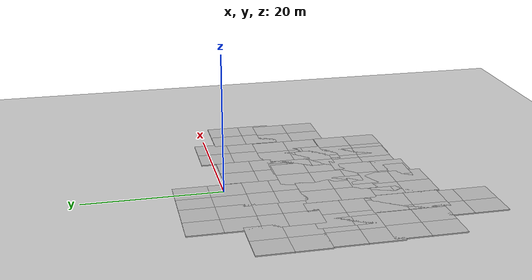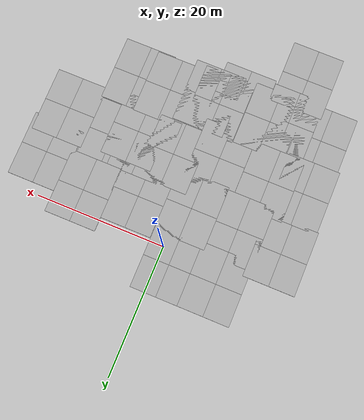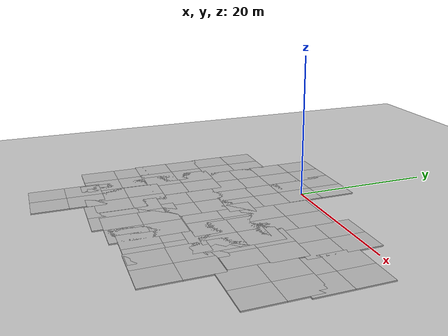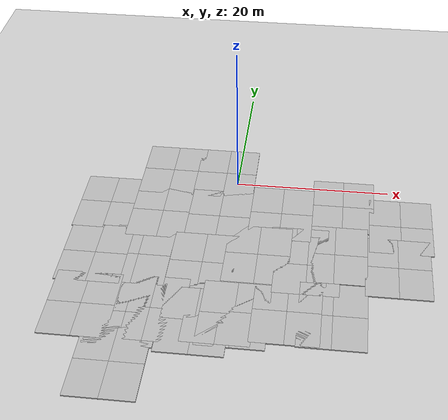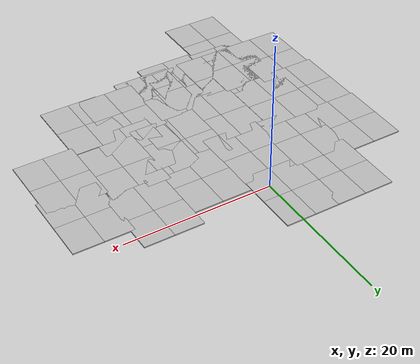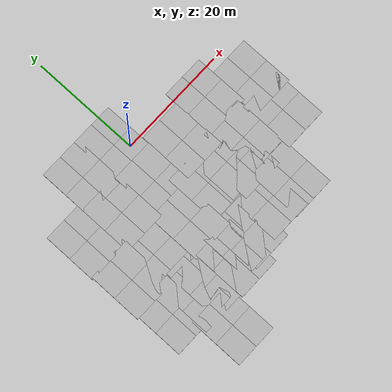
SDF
<sdf version="1.6">
 <world name="default">
  <model name="ground_plane">
   <static>1</static>
   <link name="link">
    <collision name="collision">
     <geometry><plane><normal>0 0 1</normal><size>100 100</size></plane></geometry>
     <surface><friction><ode><mu>100</mu><mu2>50</mu2></ode></friction></surface>
    </collision>
    <visual name="visual">
     <cast_shadows>0</cast_shadows>
     <geometry><plane><normal>0 0 1</normal><size>100 100</size></plane></geometry>
     <material>
      <script><uri>file://media/materials/scripts/gazebo.material</uri><name>Gazebo/Grey</name></script>
     </material>
    </visual>
   </link>
  </model>
  <model name="mud_box">
   <static>1</static>
   <link name="link">
    <collision name="collision"><geometry><box><size>8 10 0.2</size></box></geometry></collision>
    <visual name="visual_1">
     <pose>-2 2.5 0 0 -0 0</pose>
     <cast_shadows>0</cast_shadows>
     <geometry><box><size>4 5 0.2</size></box></geometry>
     <material>
      <script>
       <uri>model://mud_box/materials/scripts</uri>
       <uri>model://mud_box/materials/textures</uri>
       <name>vrc/mud</name>
      </script>
     </material>
    </visual>
    <visual name="visual_2">
     <pose>2 2.5 0 0 -0 0</pose>
     <cast_shadows>0</cast_shadows>
     <geometry><box><size>4 5 0.2</size></box></geometry>
     <material>
      <script>
       <uri>model://mud_box/materials/scripts</uri>
       <uri>model://mud_box/materials/textures</uri>
       <name>vrc/mud</name>
      </script>
     </material>
    </visual>
    <visual name="visual_3">
     <pose>2 -2.5 0 0 -0 0</pose>
     <cast_shadows>0</cast_shadows>
     <geometry><box><size>4 5 0.2</size></box></geometry>
     <material>
      <script>
       <uri>model://mud_box/materials/scripts</uri>
       <uri>model://mud_box/materials/textures</uri>
       <name>vrc/mud</name>
      </script>
     </material>
    </visual>
    <visual name="visual_4">
     <pose>-2 -2.5 0 0 -0 0</pose>
     <cast_shadows>0</cast_shadows>
     <geometry><box><size>4 5 0.2</size></box></geometry>
     <material>
      <script>
       <uri>model://mud_box/materials/scripts</uri>
       <uri>model://mud_box/materials/textures</uri>
       <name>vrc/mud</name>
      </script>
     </material>
    </visual>
   </link>
   <pose>-9.02524 2.09965 0 0 -0 0</pose>
  </model>
  <model name="mud_box_clone">
   <static>1</static>
   <link name="link">
    <collision name="collision"><geometry><box><size>8 10 0.2</size></box></geometry></collision>
    <visual name="visual_1">
     <pose>-2 2.5 0 0 -0 0</pose>
     <cast_shadows>0</cast_shadows>
     <geometry><box><size>4 5 0.2</size></box></geometry>
     <material>
      <script>
       <uri>model://mud_box/materials/scripts</uri>
       <uri>model://mud_box/materials/textures</uri>
       <name>vrc/mud</name>
      </script>
     </material>
    </visual>
    <visual name="visual_2">
     <pose>2 2.5 0 0 -0 0</pose>
     <cast_shadows>0</cast_shadows>
     <geometry><box><size>4 5 0.2</size></box></geometry>
     <material>
      <script>
       <uri>model://mud_box/materials/scripts</uri>
       <uri>model://mud_box/materials/textures</uri>
       <name>vrc/mud</name>
      </script>
     </material>
    </visual>
    <visual name="visual_3">
     <pose>2 -2.5 0 0 -0 0</pose>
     <cast_shadows>0</cast_shadows>
     <geometry><box><size>4 5 0.2</size></box></geometry>
     <material>
      <script>
       <uri>model://mud_box/materials/scripts</uri>
       <uri>model://mud_box/materials/textures</uri>
       <name>vrc/mud</name>
      </script>
     </material>
    </visual>
    <visual name="visual_4">
     <pose>-2 -2.5 0 0 -0 0</pose>
     <cast_shadows>0</cast_shadows>
     <geometry><box><size>4 5 0.2</size></box></geometry>
     <material>
      <script>
       <uri>model://mud_box/materials/scripts</uri>
       <uri>model://mud_box/materials/textures</uri>
       <name>vrc/mud</name>
      </script>
     </material>
    </visual>
   </link>
   <pose>-9.01138 -6.47442 0 0 -0 0</pose>
  </model>
  <model name="mud_box_clone_1">
   <static>1</static>
   <link name="link">
    <collision name="collision"><geometry><box><size>8 10 0.2</size></box></geometry></collision>
    <visual name="visual_1">
     <pose>-2 2.5 0 0 -0 0</pose>
     <cast_shadows>0</cast_shadows>
     <geometry><box><size>4 5 0.2</size></box></geometry>
     <material>
      <script>
       <uri>model://mud_box/materials/scripts</uri>
       <uri>model://mud_box/materials/textures</uri>
       <name>vrc/mud</name>
      </script>
     </material>
    </visual>
    <visual name="visual_2">
     <pose>2 2.5 0 0 -0 0</pose>
     <cast_shadows>0</cast_shadows>
     <geometry><box><size>4 5 0.2</size></box></geometry>
     <material>
      <script>
       <uri>model://mud_box/materials/scripts</uri>
       <uri>model://mud_box/materials/textures</uri>
       <name>vrc/mud</name>
      </script>
     </material>
    </visual>
    <visual name="visual_3">
     <pose>2 -2.5 0 0 -0 0</pose>
     <cast_shadows>0</cast_shadows>
     <geometry><box><size>4 5 0.2</size></box></geometry>
     <material>
      <script>
       <uri>model://mud_box/materials/scripts</uri>
       <uri>model://mud_box/materials/textures</uri>
       <name>vrc/mud</name>
      </script>
     </material>
    </visual>
    <visual name="visual_4">
     <pose>-2 -2.5 0 0 -0 0</pose>
     <cast_shadows>0</cast_shadows>
     <geometry><box><size>4 5 0.2</size></box></geometry>
     <material>
      <script>
       <uri>model://mud_box/materials/scripts</uri>
       <uri>model://mud_box/materials/textures</uri>
       <name>vrc/mud</name>
      </script>
     </material>
    </visual>
   </link>
   <pose>-1.61149 -6.78882 0 0 -0 0</pose>
  </model>
  <model name="mud_box_clone_3">
   <static>1</static>
   <link name="link">
    <collision name="collision"><geometry><box><size>8 10 0.2</size></box></geometry></collision>
    <visual name="visual_1">
     <pose>-2 2.5 0 0 -0 0</pose>
     <cast_shadows>0</cast_shadows>
     <geometry><box><size>4 5 0.2</size></box></geometry>
     <material>
      <script>
       <uri>model://mud_box/materials/scripts</uri>
       <uri>model://mud_box/materials/textures</uri>
       <name>vrc/mud</name>
      </script>
     </material>
    </visual>
    <visual name="visual_2">
     <pose>2 2.5 0 0 -0 0</pose>
     <cast_shadows>0</cast_shadows>
     <geometry><box><size>4 5 0.2</size></box></geometry>
     <material>
      <script>
       <uri>model://mud_box/materials/scripts</uri>
       <uri>model://mud_box/materials/textures</uri>
       <name>vrc/mud</name>
      </script>
     </material>
    </visual>
    <visual name="visual_3">
     <pose>2 -2.5 0 0 -0 0</pose>
     <cast_shadows>0</cast_shadows>
     <geometry><box><size>4 5 0.2</size></box></geometry>
     <material>
      <script>
       <uri>model://mud_box/materials/scripts</uri>
       <uri>model://mud_box/materials/textures</uri>
       <name>vrc/mud</name>
      </script>
     </material>
    </visual>
    <visual name="visual_4">
     <pose>-2 -2.5 0 0 -0 0</pose>
     <cast_shadows>0</cast_shadows>
     <geometry><box><size>4 5 0.2</size></box></geometry>
     <material>
      <script>
       <uri>model://mud_box/materials/scripts</uri>
       <uri>model://mud_box/materials/textures</uri>
       <name>vrc/mud</name>
      </script>
     </material>
    </visual>
   </link>
   <pose>6.33977 -5.49838 0 0 -0 0</pose>
  </model>
  <model name="mud_box_clone_5">
   <static>1</static>
   <link name="link">
    <collision name="collision"><geometry><box><size>8 10 0.2</size></box></geometry></collision>
    <visual name="visual_1">
     <pose>-2 2.5 0 0 -0 0</pose>
     <cast_shadows>0</cast_shadows>
     <geometry><box><size>4 5 0.2</size></box></geometry>
     <material>
      <script>
       <uri>model://mud_box/materials/scripts</uri>
       <uri>model://mud_box/materials/textures</uri>
       <name>vrc/mud</name>
      </script>
     </material>
    </visual>
    <visual name="visual_2">
     <pose>2 2.5 0 0 -0 0</pose>
     <cast_shadows>0</cast_shadows>
     <geometry><box><size>4 5 0.2</size></box></geometry>
     <material>
      <script>
       <uri>model://mud_box/materials/scripts</uri>
       <uri>model://mud_box/materials/textures</uri>
       <name>vrc/mud</name>
      </script>
     </material>
    </visual>
    <visual name="visual_3">
     <pose>2 -2.5 0 0 -0 0</pose>
     <cast_shadows>0</cast_shadows>
     <geometry><box><size>4 5 0.2</size></box></geometry>
     <material>
      <script>
       <uri>model://mud_box/materials/scripts</uri>
       <uri>model://mud_box/materials/textures</uri>
       <name>vrc/mud</name>
      </script>
     </material>
    </visual>
    <visual name="visual_4">
     <pose>-2 -2.5 0 0 -0 0</pose>
     <cast_shadows>0</cast_shadows>
     <geometry><box><size>4 5 0.2</size></box></geometry>
     <material>
      <script>
       <uri>model://mud_box/materials/scripts</uri>
       <uri>model://mud_box/materials/textures</uri>
       <name>vrc/mud</name>
      </script>
     </material>
    </visual>
   </link>
   <pose>14.1998 -3.30517 0 0 -0 0</pose>
  </model>
  <model name="mud_box_clone_6">
   <static>1</static>
   <link name="link">
    <collision name="collision"><geometry><box><size>8 10 0.2</size></box></geometry></collision>
    <visual name="visual_1">
     <pose>-2 2.5 0 0 -0 0</pose>
     <cast_shadows>0</cast_shadows>
     <geometry><box><size>4 5 0.2</size></box></geometry>
     <material>
      <script>
       <uri>model://mud_box/materials/scripts</uri>
       <uri>model://mud_box/materials/textures</uri>
       <name>vrc/mud</name>
      </script>
     </material>
    </visual>
    <visual name="visual_2">
     <pose>2 2.5 0 0 -0 0</pose>
     <cast_shadows>0</cast_shadows>
     <geometry><box><size>4 5 0.2</size></box></geometry>
     <material>
      <script>
       <uri>model://mud_box/materials/scripts</uri>
       <uri>model://mud_box/materials/textures</uri>
       <name>vrc/mud</name>
      </script>
     </material>
    </visual>
    <visual name="visual_3">
     <pose>2 -2.5 0 0 -0 0</pose>
     <cast_shadows>0</cast_shadows>
     <geometry><box><size>4 5 0.2</size></box></geometry>
     <material>
      <script>
       <uri>model://mud_box/materials/scripts</uri>
       <uri>model://mud_box/materials/textures</uri>
       <name>vrc/mud</name>
      </script>
     </material>
    </visual>
    <visual name="visual_4">
     <pose>-2 -2.5 0 0 -0 0</pose>
     <cast_shadows>0</cast_shadows>
     <geometry><box><size>4 5 0.2</size></box></geometry>
     <material>
      <script>
       <uri>model://mud_box/materials/scripts</uri>
       <uri>model://mud_box/materials/textures</uri>
       <name>vrc/mud</name>
      </script>
     </material>
    </visual>
   </link>
   <pose>13.4278 -12.4629 0 0 -0 0</pose>
  </model>
  <model name="mud_box_clone_7">
   <static>1</static>
   <link name="link">
    <collision name="collision"><geometry><box><size>8 10 0.2</size></box></geometry></collision>
    <visual name="visual_1">
     <pose>-2 2.5 0 0 -0 0</pose>
     <cast_shadows>0</cast_shadows>
     <geometry><box><size>4 5 0.2</size></box></geometry>
     <material>
      <script>
       <uri>model://mud_box/materials/scripts</uri>
       <uri>model://mud_box/materials/textures</uri>
       <name>vrc/mud</name>
      </script>
     </material>
    </visual>
    <visual name="visual_2">
     <pose>2 2.5 0 0 -0 0</pose>
     <cast_shadows>0</cast_shadows>
     <geometry><box><size>4 5 0.2</size></box></geometry>
     <material>
      <script>
       <uri>model://mud_box/materials/scripts</uri>
       <uri>model://mud_box/materials/textures</uri>
       <name>vrc/mud</name>
      </script>
     </material>
    </visual>
    <visual name="visual_3">
     <pose>2 -2.5 0 0 -0 0</pose>
     <cast_shadows>0</cast_shadows>
     <geometry><box><size>4 5 0.2</size></box></geometry>
     <material>
      <script>
       <uri>model://mud_box/materials/scripts</uri>
       <uri>model://mud_box/materials/textures</uri>
       <name>vrc/mud</name>
      </script>
     </material>
    </visual>
    <visual name="visual_4">
     <pose>-2 -2.5 0 0 -0 0</pose>
     <cast_shadows>0</cast_shadows>
     <geometry><box><size>4 5 0.2</size></box></geometry>
     <material>
      <script>
       <uri>model://mud_box/materials/scripts</uri>
       <uri>model://mud_box/materials/textures</uri>
       <name>vrc/mud</name>
      </script>
     </material>
    </visual>
   </link>
   <pose>3.9904 -13.3757 0 0 -0 0</pose>
  </model>
  <model name="mud_box_clone_8">
   <static>1</static>
   <link name="link">
    <collision name="collision"><geometry><box><size>8 10 0.2</size></box></geometry></collision>
    <visual name="visual_1">
     <pose>-2 2.5 0 0 -0 0</pose>
     <cast_shadows>0</cast_shadows>
     <geometry><box><size>4 5 0.2</size></box></geometry>
     <material>
      <script>
       <uri>model://mud_box/materials/scripts</uri>
       <uri>model://mud_box/materials/textures</uri>
       <name>vrc/mud</name>
      </script>
     </material>
    </visual>
    <visual name="visual_2">
     <pose>2 2.5 0 0 -0 0</pose>
     <cast_shadows>0</cast_shadows>
     <geometry><box><size>4 5 0.2</size></box></geometry>
     <material>
      <script>
       <uri>model://mud_box/materials/scripts</uri>
       <uri>model://mud_box/materials/textures</uri>
       <name>vrc/mud</name>
      </script>
     </material>
    </visual>
    <visual name="visual_3">
     <pose>2 -2.5 0 0 -0 0</pose>
     <cast_shadows>0</cast_shadows>
     <geometry><box><size>4 5 0.2</size></box></geometry>
     <material>
      <script>
       <uri>model://mud_box/materials/scripts</uri>
       <uri>model://mud_box/materials/textures</uri>
       <name>vrc/mud</name>
      </script>
     </material>
    </visual>
    <visual name="visual_4">
     <pose>-2 -2.5 0 0 -0 0</pose>
     <cast_shadows>0</cast_shadows>
     <geometry><box><size>4 5 0.2</size></box></geometry>
     <material>
      <script>
       <uri>model://mud_box/materials/scripts</uri>
       <uri>model://mud_box/materials/textures</uri>
       <name>vrc/mud</name>
      </script>
     </material>
    </visual>
   </link>
   <pose>8.56451 -13.1819 0 0 -0 0</pose>
  </model>
  <model name="mud_box_clone_9">
   <static>1</static>
   <link name="link">
    <collision name="collision"><geometry><box><size>8 10 0.2</size></box></geometry></collision>
    <visual name="visual_1">
     <pose>-2 2.5 0 0 -0 0</pose>
     <cast_shadows>0</cast_shadows>
     <geometry><box><size>4 5 0.2</size></box></geometry>
     <material>
      <script>
       <uri>model://mud_box/materials/scripts</uri>
       <uri>model://mud_box/materials/textures</uri>
       <name>vrc/mud</name>
      </script>
     </material>
    </visual>
    <visual name="visual_2">
     <pose>2 2.5 0 0 -0 0</pose>
     <cast_shadows>0</cast_shadows>
     <geometry><box><size>4 5 0.2</size></box></geometry>
     <material>
      <script>
       <uri>model://mud_box/materials/scripts</uri>
       <uri>model://mud_box/materials/textures</uri>
       <name>vrc/mud</name>
      </script>
     </material>
    </visual>
    <visual name="visual_3">
     <pose>2 -2.5 0 0 -0 0</pose>
     <cast_shadows>0</cast_shadows>
     <geometry><box><size>4 5 0.2</size></box></geometry>
     <material>
      <script>
       <uri>model://mud_box/materials/scripts</uri>
       <uri>model://mud_box/materials/textures</uri>
       <name>vrc/mud</name>
      </script>
     </material>
    </visual>
    <visual name="visual_4">
     <pose>-2 -2.5 0 0 -0 0</pose>
     <cast_shadows>0</cast_shadows>
     <geometry><box><size>4 5 0.2</size></box></geometry>
     <material>
      <script>
       <uri>model://mud_box/materials/scripts</uri>
       <uri>model://mud_box/materials/textures</uri>
       <name>vrc/mud</name>
      </script>
     </material>
    </visual>
   </link>
   <pose>-2.58874 -15.4114 0 0 -0 0</pose>
  </model>
  <model name="mud_box_clone_10">
   <static>1</static>
   <link name="link">
    <collision name="collision"><geometry><box><size>8 10 0.2</size></box></geometry></collision>
    <visual name="visual_1">
     <pose>-2 2.5 0 0 -0 0</pose>
     <cast_shadows>0</cast_shadows>
     <geometry><box><size>4 5 0.2</size></box></geometry>
     <material>
      <script>
       <uri>model://mud_box/materials/scripts</uri>
       <uri>model://mud_box/materials/textures</uri>
       <name>vrc/mud</name>
      </script>
     </material>
    </visual>
    <visual name="visual_2">
     <pose>2 2.5 0 0 -0 0</pose>
     <cast_shadows>0</cast_shadows>
     <geometry><box><size>4 5 0.2</size></box></geometry>
     <material>
      <script>
       <uri>model://mud_box/materials/scripts</uri>
       <uri>model://mud_box/materials/textures</uri>
       <name>vrc/mud</name>
      </script>
     </material>
    </visual>
    <visual name="visual_3">
     <pose>2 -2.5 0 0 -0 0</pose>
     <cast_shadows>0</cast_shadows>
     <geometry><box><size>4 5 0.2</size></box></geometry>
     <material>
      <script>
       <uri>model://mud_box/materials/scripts</uri>
       <uri>model://mud_box/materials/textures</uri>
       <name>vrc/mud</name>
      </script>
     </material>
    </visual>
    <visual name="visual_4">
     <pose>-2 -2.5 0 0 -0 0</pose>
     <cast_shadows>0</cast_shadows>
     <geometry><box><size>4 5 0.2</size></box></geometry>
     <material>
      <script>
       <uri>model://mud_box/materials/scripts</uri>
       <uri>model://mud_box/materials/textures</uri>
       <name>vrc/mud</name>
      </script>
     </material>
    </visual>
   </link>
   <pose>-10.6003 -14.8746 0 0 -0 0</pose>
  </model>
  <model name="mud_box_clone_11">
   <static>1</static>
   <link name="link">
    <collision name="collision"><geometry><box><size>8 10 0.2</size></box></geometry></collision>
    <visual name="visual_1">
     <pose>-2 2.5 0 0 -0 0</pose>
     <cast_shadows>0</cast_shadows>
     <geometry><box><size>4 5 0.2</size></box></geometry>
     <material>
      <script>
       <uri>model://mud_box/materials/scripts</uri>
       <uri>model://mud_box/materials/textures</uri>
       <name>vrc/mud</name>
      </script>
     </material>
    </visual>
    <visual name="visual_2">
     <pose>2 2.5 0 0 -0 0</pose>
     <cast_shadows>0</cast_shadows>
     <geometry><box><size>4 5 0.2</size></box></geometry>
     <material>
      <script>
       <uri>model://mud_box/materials/scripts</uri>
       <uri>model://mud_box/materials/textures</uri>
       <name>vrc/mud</name>
      </script>
     </material>
    </visual>
    <visual name="visual_3">
     <pose>2 -2.5 0 0 -0 0</pose>
     <cast_shadows>0</cast_shadows>
     <geometry><box><size>4 5 0.2</size></box></geometry>
     <material>
      <script>
       <uri>model://mud_box/materials/scripts</uri>
       <uri>model://mud_box/materials/textures</uri>
       <name>vrc/mud</name>
      </script>
     </material>
    </visual>
    <visual name="visual_4">
     <pose>-2 -2.5 0 0 -0 0</pose>
     <cast_shadows>0</cast_shadows>
     <geometry><box><size>4 5 0.2</size></box></geometry>
     <material>
      <script>
       <uri>model://mud_box/materials/scripts</uri>
       <uri>model://mud_box/materials/textures</uri>
       <name>vrc/mud</name>
      </script>
     </material>
    </visual>
   </link>
   <pose>-16.1399 -5.49382 0 0 -0 0</pose>
  </model>
  <model name="mud_box_clone_13">
   <static>1</static>
   <link name="link">
    <collision name="collision"><geometry><box><size>8 10 0.2</size></box></geometry></collision>
    <visual name="visual_1">
     <pose>-2 2.5 0 0 -0 0</pose>
     <cast_shadows>0</cast_shadows>
     <geometry><box><size>4 5 0.2</size></box></geometry>
     <material>
      <script>
       <uri>model://mud_box/materials/scripts</uri>
       <uri>model://mud_box/materials/textures</uri>
       <name>vrc/mud</name>
      </script>
     </material>
    </visual>
    <visual name="visual_2">
     <pose>2 2.5 0 0 -0 0</pose>
     <cast_shadows>0</cast_shadows>
     <geometry><box><size>4 5 0.2</size></box></geometry>
     <material>
      <script>
       <uri>model://mud_box/materials/scripts</uri>
       <uri>model://mud_box/materials/textures</uri>
       <name>vrc/mud</name>
      </script>
     </material>
    </visual>
    <visual name="visual_3">
     <pose>2 -2.5 0 0 -0 0</pose>
     <cast_shadows>0</cast_shadows>
     <geometry><box><size>4 5 0.2</size></box></geometry>
     <material>
      <script>
       <uri>model://mud_box/materials/scripts</uri>
       <uri>model://mud_box/materials/textures</uri>
       <name>vrc/mud</name>
      </script>
     </material>
    </visual>
    <visual name="visual_4">
     <pose>-2 -2.5 0 0 -0 0</pose>
     <cast_shadows>0</cast_shadows>
     <geometry><box><size>4 5 0.2</size></box></geometry>
     <material>
      <script>
       <uri>model://mud_box/materials/scripts</uri>
       <uri>model://mud_box/materials/textures</uri>
       <name>vrc/mud</name>
      </script>
     </material>
    </visual>
   </link>
   <pose>-15.9438 -15.0899 0 0 -0 0</pose>
  </model>
  <model name="mud_box_clone_8_clone">
   <static>1</static>
   <link name="link">
    <collision name="collision"><geometry><box><size>8 10 0.2</size></box></geometry></collision>
    <visual name="visual_1">
     <pose>-2 2.5 0 0 -0 0</pose>
     <cast_shadows>0</cast_shadows>
     <geometry><box><size>4 5 0.2</size></box></geometry>
     <material>
      <script>
       <uri>model://mud_box/materials/scripts</uri>
       <uri>model://mud_box/materials/textures</uri>
       <name>vrc/mud</name>
      </script>
     </material>
    </visual>
    <visual name="visual_2">
     <pose>2 2.5 0 0 -0 0</pose>
     <cast_shadows>0</cast_shadows>
     <geometry><box><size>4 5 0.2</size></box></geometry>
     <material>
      <script>
       <uri>model://mud_box/materials/scripts</uri>
       <uri>model://mud_box/materials/textures</uri>
       <name>vrc/mud</name>
      </script>
     </material>
    </visual>
    <visual name="visual_3">
     <pose>2 -2.5 0 0 -0 0</pose>
     <cast_shadows>0</cast_shadows>
     <geometry><box><size>4 5 0.2</size></box></geometry>
     <material>
      <script>
       <uri>model://mud_box/materials/scripts</uri>
       <uri>model://mud_box/materials/textures</uri>
       <name>vrc/mud</name>
      </script>
     </material>
    </visual>
    <visual name="visual_4">
     <pose>-2 -2.5 0 0 -0 0</pose>
     <cast_shadows>0</cast_shadows>
     <geometry><box><size>4 5 0.2</size></box></geometry>
     <material>
      <script>
       <uri>model://mud_box/materials/scripts</uri>
       <uri>model://mud_box/materials/textures</uri>
       <name>vrc/mud</name>
      </script>
     </material>
    </visual>
   </link>
   <pose>-10.445 -31.733 0 0 -0 0</pose>
  </model>
  <model name="mud_box_clone_8_clone_clone">
   <static>1</static>
   <link name="link">
    <collision name="collision"><geometry><box><size>8 10 0.2</size></box></geometry></collision>
    <visual name="visual_1">
     <pose>-2 2.5 0 0 -0 0</pose>
     <cast_shadows>0</cast_shadows>
     <geometry><box><size>4 5 0.2</size></box></geometry>
     <material>
      <script>
       <uri>model://mud_box/materials/scripts</uri>
       <uri>model://mud_box/materials/textures</uri>
       <name>vrc/mud</name>
      </script>
     </material>
    </visual>
    <visual name="visual_2">
     <pose>2 2.5 0 0 -0 0</pose>
     <cast_shadows>0</cast_shadows>
     <geometry><box><size>4 5 0.2</size></box></geometry>
     <material>
      <script>
       <uri>model://mud_box/materials/scripts</uri>
       <uri>model://mud_box/materials/textures</uri>
       <name>vrc/mud</name>
      </script>
     </material>
    </visual>
    <visual name="visual_3">
     <pose>2 -2.5 0 0 -0 0</pose>
     <cast_shadows>0</cast_shadows>
     <geometry><box><size>4 5 0.2</size></box></geometry>
     <material>
      <script>
       <uri>model://mud_box/materials/scripts</uri>
       <uri>model://mud_box/materials/textures</uri>
       <name>vrc/mud</name>
      </script>
     </material>
    </visual>
    <visual name="visual_4">
     <pose>-2 -2.5 0 0 -0 0</pose>
     <cast_shadows>0</cast_shadows>
     <geometry><box><size>4 5 0.2</size></box></geometry>
     <material>
      <script>
       <uri>model://mud_box/materials/scripts</uri>
       <uri>model://mud_box/materials/textures</uri>
       <name>vrc/mud</name>
      </script>
     </material>
    </visual>
   </link>
   <pose>-15.6067 -23.6119 0 0 -0 0</pose>
  </model>
  <model name="mud_box_clone_8_clone_clone_0">
   <static>1</static>
   <link name="link">
    <collision name="collision"><geometry><box><size>8 10 0.2</size></box></geometry></collision>
    <visual name="visual_1">
     <pose>-2 2.5 0 0 -0 0</pose>
     <cast_shadows>0</cast_shadows>
     <geometry><box><size>4 5 0.2</size></box></geometry>
     <material>
      <script>
       <uri>model://mud_box/materials/scripts</uri>
       <uri>model://mud_box/materials/textures</uri>
       <name>vrc/mud</name>
      </script>
     </material>
    </visual>
    <visual name="visual_2">
     <pose>2 2.5 0 0 -0 0</pose>
     <cast_shadows>0</cast_shadows>
     <geometry><box><size>4 5 0.2</size></box></geometry>
     <material>
      <script>
       <uri>model://mud_box/materials/scripts</uri>
       <uri>model://mud_box/materials/textures</uri>
       <name>vrc/mud</name>
      </script>
     </material>
    </visual>
    <visual name="visual_3">
     <pose>2 -2.5 0 0 -0 0</pose>
     <cast_shadows>0</cast_shadows>
     <geometry><box><size>4 5 0.2</size></box></geometry>
     <material>
      <script>
       <uri>model://mud_box/materials/scripts</uri>
       <uri>model://mud_box/materials/textures</uri>
       <name>vrc/mud</name>
      </script>
     </material>
    </visual>
    <visual name="visual_4">
     <pose>-2 -2.5 0 0 -0 0</pose>
     <cast_shadows>0</cast_shadows>
     <geometry><box><size>4 5 0.2</size></box></geometry>
     <material>
      <script>
       <uri>model://mud_box/materials/scripts</uri>
       <uri>model://mud_box/materials/textures</uri>
       <name>vrc/mud</name>
      </script>
     </material>
    </visual>
   </link>
   <pose>-7.49147 -23.5006 0 0 -0 0</pose>
  </model>
  <model name="mud_box_clone_8_clone_clone_1">
   <static>1</static>
   <link name="link">
    <collision name="collision"><geometry><box><size>8 10 0.2</size></box></geometry></collision>
    <visual name="visual_1">
     <pose>-2 2.5 0 0 -0 0</pose>
     <cast_shadows>0</cast_shadows>
     <geometry><box><size>4 5 0.2</size></box></geometry>
     <material>
      <script>
       <uri>model://mud_box/materials/scripts</uri>
       <uri>model://mud_box/materials/textures</uri>
       <name>vrc/mud</name>
      </script>
     </material>
    </visual>
    <visual name="visual_2">
     <pose>2 2.5 0 0 -0 0</pose>
     <cast_shadows>0</cast_shadows>
     <geometry><box><size>4 5 0.2</size></box></geometry>
     <material>
      <script>
       <uri>model://mud_box/materials/scripts</uri>
       <uri>model://mud_box/materials/textures</uri>
       <name>vrc/mud</name>
      </script>
     </material>
    </visual>
    <visual name="visual_3">
     <pose>2 -2.5 0 0 -0 0</pose>
     <cast_shadows>0</cast_shadows>
     <geometry><box><size>4 5 0.2</size></box></geometry>
     <material>
      <script>
       <uri>model://mud_box/materials/scripts</uri>
       <uri>model://mud_box/materials/textures</uri>
       <name>vrc/mud</name>
      </script>
     </material>
    </visual>
    <visual name="visual_4">
     <pose>-2 -2.5 0 0 -0 0</pose>
     <cast_shadows>0</cast_shadows>
     <geometry><box><size>4 5 0.2</size></box></geometry>
     <material>
      <script>
       <uri>model://mud_box/materials/scripts</uri>
       <uri>model://mud_box/materials/textures</uri>
       <name>vrc/mud</name>
      </script>
     </material>
    </visual>
   </link>
   <pose>0.581991 -23.1742 0 0 -0 0</pose>
  </model>
  <model name="mud_box_clone_8_clone_clone_2">
   <static>1</static>
   <link name="link">
    <collision name="collision"><geometry><box><size>8 10 0.2</size></box></geometry></collision>
    <visual name="visual_1">
     <pose>-2 2.5 0 0 -0 0</pose>
     <cast_shadows>0</cast_shadows>
     <geometry><box><size>4 5 0.2</size></box></geometry>
     <material>
      <script>
       <uri>model://mud_box/materials/scripts</uri>
       <uri>model://mud_box/materials/textures</uri>
       <name>vrc/mud</name>
      </script>
     </material>
    </visual>
    <visual name="visual_2">
     <pose>2 2.5 0 0 -0 0</pose>
     <cast_shadows>0</cast_shadows>
     <geometry><box><size>4 5 0.2</size></box></geometry>
     <material>
      <script>
       <uri>model://mud_box/materials/scripts</uri>
       <uri>model://mud_box/materials/textures</uri>
       <name>vrc/mud</name>
      </script>
     </material>
    </visual>
    <visual name="visual_3">
     <pose>2 -2.5 0 0 -0 0</pose>
     <cast_shadows>0</cast_shadows>
     <geometry><box><size>4 5 0.2</size></box></geometry>
     <material>
      <script>
       <uri>model://mud_box/materials/scripts</uri>
       <uri>model://mud_box/materials/textures</uri>
       <name>vrc/mud</name>
      </script>
     </material>
    </visual>
    <visual name="visual_4">
     <pose>-2 -2.5 0 0 -0 0</pose>
     <cast_shadows>0</cast_shadows>
     <geometry><box><size>4 5 0.2</size></box></geometry>
     <material>
      <script>
       <uri>model://mud_box/materials/scripts</uri>
       <uri>model://mud_box/materials/textures</uri>
       <name>vrc/mud</name>
      </script>
     </material>
    </visual>
   </link>
   <pose>8.25154 -22.4416 0 0 -0 0</pose>
  </model>
  <model name="mud_box_clone_8_clone_clone_3">
   <static>1</static>
   <link name="link">
    <collision name="collision"><geometry><box><size>8 10 0.2</size></box></geometry></collision>
    <visual name="visual_1">
     <pose>-2 2.5 0 0 -0 0</pose>
     <cast_shadows>0</cast_shadows>
     <geometry><box><size>4 5 0.2</size></box></geometry>
     <material>
      <script>
       <uri>model://mud_box/materials/scripts</uri>
       <uri>model://mud_box/materials/textures</uri>
       <name>vrc/mud</name>
      </script>
     </material>
    </visual>
    <visual name="visual_2">
     <pose>2 2.5 0 0 -0 0</pose>
     <cast_shadows>0</cast_shadows>
     <geometry><box><size>4 5 0.2</size></box></geometry>
     <material>
      <script>
       <uri>model://mud_box/materials/scripts</uri>
       <uri>model://mud_box/materials/textures</uri>
       <name>vrc/mud</name>
      </script>
     </material>
    </visual>
    <visual name="visual_3">
     <pose>2 -2.5 0 0 -0 0</pose>
     <cast_shadows>0</cast_shadows>
     <geometry><box><size>4 5 0.2</size></box></geometry>
     <material>
      <script>
       <uri>model://mud_box/materials/scripts</uri>
       <uri>model://mud_box/materials/textures</uri>
       <name>vrc/mud</name>
      </script>
     </material>
    </visual>
    <visual name="visual_4">
     <pose>-2 -2.5 0 0 -0 0</pose>
     <cast_shadows>0</cast_shadows>
     <geometry><box><size>4 5 0.2</size></box></geometry>
     <material>
      <script>
       <uri>model://mud_box/materials/scripts</uri>
       <uri>model://mud_box/materials/textures</uri>
       <name>vrc/mud</name>
      </script>
     </material>
    </visual>
   </link>
   <pose>13.5154 -22.5631 0 0 -0 0</pose>
  </model>
  <model name="mud_box_clone_8_clone_clone_12">
   <static>1</static>
   <link name="link">
    <collision name="collision"><geometry><box><size>8 10 0.2</size></box></geometry></collision>
    <visual name="visual_1">
     <pose>-2 2.5 0 0 -0 0</pose>
     <cast_shadows>0</cast_shadows>
     <geometry><box><size>4 5 0.2</size></box></geometry>
     <material>
      <script>
       <uri>model://mud_box/materials/scripts</uri>
       <uri>model://mud_box/materials/textures</uri>
       <name>vrc/mud</name>
      </script>
     </material>
    </visual>
    <visual name="visual_2">
     <pose>2 2.5 0 0 -0 0</pose>
     <cast_shadows>0</cast_shadows>
     <geometry><box><size>4 5 0.2</size></box></geometry>
     <material>
      <script>
       <uri>model://mud_box/materials/scripts</uri>
       <uri>model://mud_box/materials/textures</uri>
       <name>vrc/mud</name>
      </script>
     </material>
    </visual>
    <visual name="visual_3">
     <pose>2 -2.5 0 0 -0 0</pose>
     <cast_shadows>0</cast_shadows>
     <geometry><box><size>4 5 0.2</size></box></geometry>
     <material>
      <script>
       <uri>model://mud_box/materials/scripts</uri>
       <uri>model://mud_box/materials/textures</uri>
       <name>vrc/mud</name>
      </script>
     </material>
    </visual>
    <visual name="visual_4">
     <pose>-2 -2.5 0 0 -0 0</pose>
     <cast_shadows>0</cast_shadows>
     <geometry><box><size>4 5 0.2</size></box></geometry>
     <material>
      <script>
       <uri>model://mud_box/materials/scripts</uri>
       <uri>model://mud_box/materials/textures</uri>
       <name>vrc/mud</name>
      </script>
     </material>
    </visual>
   </link>
   <pose>21.1697 -14.034 0 0 -0 0</pose>
  </model>
  <model name="mud_box_clone_8_clone_clone_13">
   <static>1</static>
   <link name="link">
    <collision name="collision"><geometry><box><size>8 10 0.2</size></box></geometry></collision>
    <visual name="visual_1">
     <pose>-2 2.5 0 0 -0 0</pose>
     <cast_shadows>0</cast_shadows>
     <geometry><box><size>4 5 0.2</size></box></geometry>
     <material>
      <script>
       <uri>model://mud_box/materials/scripts</uri>
       <uri>model://mud_box/materials/textures</uri>
       <name>vrc/mud</name>
      </script>
     </material>
    </visual>
    <visual name="visual_2">
     <pose>2 2.5 0 0 -0 0</pose>
     <cast_shadows>0</cast_shadows>
     <geometry><box><size>4 5 0.2</size></box></geometry>
     <material>
      <script>
       <uri>model://mud_box/materials/scripts</uri>
       <uri>model://mud_box/materials/textures</uri>
       <name>vrc/mud</name>
      </script>
     </material>
    </visual>
    <visual name="visual_3">
     <pose>2 -2.5 0 0 -0 0</pose>
     <cast_shadows>0</cast_shadows>
     <geometry><box><size>4 5 0.2</size></box></geometry>
     <material>
      <script>
       <uri>model://mud_box/materials/scripts</uri>
       <uri>model://mud_box/materials/textures</uri>
       <name>vrc/mud</name>
      </script>
     </material>
    </visual>
    <visual name="visual_4">
     <pose>-2 -2.5 0 0 -0 0</pose>
     <cast_shadows>0</cast_shadows>
     <geometry><box><size>4 5 0.2</size></box></geometry>
     <material>
      <script>
       <uri>model://mud_box/materials/scripts</uri>
       <uri>model://mud_box/materials/textures</uri>
       <name>vrc/mud</name>
      </script>
     </material>
    </visual>
   </link>
   <pose>21.6087 -6.52247 0 0 -0 0</pose>
  </model>
  <model name="mud_box_clone_8_clone_clone_clone">
   <static>1</static>
   <link name="link">
    <collision name="collision"><geometry><box><size>8 10 0.2</size></box></geometry></collision>
    <visual name="visual_1">
     <pose>-2 2.5 0 0 -0 0</pose>
     <cast_shadows>0</cast_shadows>
     <geometry><box><size>4 5 0.2</size></box></geometry>
     <material>
      <script>
       <uri>model://mud_box/materials/scripts</uri>
       <uri>model://mud_box/materials/textures</uri>
       <name>vrc/mud</name>
      </script>
     </material>
    </visual>
    <visual name="visual_2">
     <pose>2 2.5 0 0 -0 0</pose>
     <cast_shadows>0</cast_shadows>
     <geometry><box><size>4 5 0.2</size></box></geometry>
     <material>
      <script>
       <uri>model://mud_box/materials/scripts</uri>
       <uri>model://mud_box/materials/textures</uri>
       <name>vrc/mud</name>
      </script>
     </material>
    </visual>
    <visual name="visual_3">
     <pose>2 -2.5 0 0 -0 0</pose>
     <cast_shadows>0</cast_shadows>
     <geometry><box><size>4 5 0.2</size></box></geometry>
     <material>
      <script>
       <uri>model://mud_box/materials/scripts</uri>
       <uri>model://mud_box/materials/textures</uri>
       <name>vrc/mud</name>
      </script>
     </material>
    </visual>
    <visual name="visual_4">
     <pose>-2 -2.5 0 0 -0 0</pose>
     <cast_shadows>0</cast_shadows>
     <geometry><box><size>4 5 0.2</size></box></geometry>
     <material>
      <script>
       <uri>model://mud_box/materials/scripts</uri>
       <uri>model://mud_box/materials/textures</uri>
       <name>vrc/mud</name>
      </script>
     </material>
    </visual>
   </link>
   <pose>-10.1428 -24.4305 0 0 -0 0</pose>
  </model>
  <model name="mud_box_clone_8_clone_clone_clone_0">
   <static>1</static>
   <link name="link">
    <collision name="collision"><geometry><box><size>8 10 0.2</size></box></geometry></collision>
    <visual name="visual_1">
     <pose>-2 2.5 0 0 -0 0</pose>
     <cast_shadows>0</cast_shadows>
     <geometry><box><size>4 5 0.2</size></box></geometry>
     <material>
      <script>
       <uri>model://mud_box/materials/scripts</uri>
       <uri>model://mud_box/materials/textures</uri>
       <name>vrc/mud</name>
      </script>
     </material>
    </visual>
    <visual name="visual_2">
     <pose>2 2.5 0 0 -0 0</pose>
     <cast_shadows>0</cast_shadows>
     <geometry><box><size>4 5 0.2</size></box></geometry>
     <material>
      <script>
       <uri>model://mud_box/materials/scripts</uri>
       <uri>model://mud_box/materials/textures</uri>
       <name>vrc/mud</name>
      </script>
     </material>
    </visual>
    <visual name="visual_3">
     <pose>2 -2.5 0 0 -0 0</pose>
     <cast_shadows>0</cast_shadows>
     <geometry><box><size>4 5 0.2</size></box></geometry>
     <material>
      <script>
       <uri>model://mud_box/materials/scripts</uri>
       <uri>model://mud_box/materials/textures</uri>
       <name>vrc/mud</name>
      </script>
     </material>
    </visual>
    <visual name="visual_4">
     <pose>-2 -2.5 0 0 -0 0</pose>
     <cast_shadows>0</cast_shadows>
     <geometry><box><size>4 5 0.2</size></box></geometry>
     <material>
      <script>
       <uri>model://mud_box/materials/scripts</uri>
       <uri>model://mud_box/materials/textures</uri>
       <name>vrc/mud</name>
      </script>
     </material>
    </visual>
   </link>
   <pose>-2.10337 -24.8836 0 0 -0 0</pose>
  </model>
  <model name="mud_box_clone_8_clone_clone_2_clone">
   <static>1</static>
   <link name="link">
    <collision name="collision"><geometry><box><size>8 10 0.2</size></box></geometry></collision>
    <visual name="visual_1">
     <pose>-2 2.5 0 0 -0 0</pose>
     <cast_shadows>0</cast_shadows>
     <geometry><box><size>4 5 0.2</size></box></geometry>
     <material>
      <script>
       <uri>model://mud_box/materials/scripts</uri>
       <uri>model://mud_box/materials/textures</uri>
       <name>vrc/mud</name>
      </script>
     </material>
    </visual>
    <visual name="visual_2">
     <pose>2 2.5 0 0 -0 0</pose>
     <cast_shadows>0</cast_shadows>
     <geometry><box><size>4 5 0.2</size></box></geometry>
     <material>
      <script>
       <uri>model://mud_box/materials/scripts</uri>
       <uri>model://mud_box/materials/textures</uri>
       <name>vrc/mud</name>
      </script>
     </material>
    </visual>
    <visual name="visual_3">
     <pose>2 -2.5 0 0 -0 0</pose>
     <cast_shadows>0</cast_shadows>
     <geometry><box><size>4 5 0.2</size></box></geometry>
     <material>
      <script>
       <uri>model://mud_box/materials/scripts</uri>
       <uri>model://mud_box/materials/textures</uri>
       <name>vrc/mud</name>
      </script>
     </material>
    </visual>
    <visual name="visual_4">
     <pose>-2 -2.5 0 0 -0 0</pose>
     <cast_shadows>0</cast_shadows>
     <geometry><box><size>4 5 0.2</size></box></geometry>
     <material>
      <script>
       <uri>model://mud_box/materials/scripts</uri>
       <uri>model://mud_box/materials/textures</uri>
       <name>vrc/mud</name>
      </script>
     </material>
    </visual>
   </link>
   <pose>10.1733 -14.6116 0 0 -0 0</pose>
  </model>
  <model name="mud_box_clone_1_clone">
   <static>1</static>
   <link name="link">
    <collision name="collision"><geometry><box><size>8 10 0.2</size></box></geometry></collision>
    <visual name="visual_1">
     <pose>-2 2.5 0 0 -0 0</pose>
     <cast_shadows>0</cast_shadows>
     <geometry><box><size>4 5 0.2</size></box></geometry>
     <material>
      <script>
       <uri>model://mud_box/materials/scripts</uri>
       <uri>model://mud_box/materials/textures</uri>
       <name>vrc/mud</name>
      </script>
     </material>
    </visual>
    <visual name="visual_2">
     <pose>2 2.5 0 0 -0 0</pose>
     <cast_shadows>0</cast_shadows>
     <geometry><box><size>4 5 0.2</size></box></geometry>
     <material>
      <script>
       <uri>model://mud_box/materials/scripts</uri>
       <uri>model://mud_box/materials/textures</uri>
       <name>vrc/mud</name>
      </script>
     </material>
    </visual>
    <visual name="visual_3">
     <pose>2 -2.5 0 0 -0 0</pose>
     <cast_shadows>0</cast_shadows>
     <geometry><box><size>4 5 0.2</size></box></geometry>
     <material>
      <script>
       <uri>model://mud_box/materials/scripts</uri>
       <uri>model://mud_box/materials/textures</uri>
       <name>vrc/mud</name>
      </script>
     </material>
    </visual>
    <visual name="visual_4">
     <pose>-2 -2.5 0 0 -0 0</pose>
     <cast_shadows>0</cast_shadows>
     <geometry><box><size>4 5 0.2</size></box></geometry>
     <material>
      <script>
       <uri>model://mud_box/materials/scripts</uri>
       <uri>model://mud_box/materials/textures</uri>
       <name>vrc/mud</name>
      </script>
     </material>
    </visual>
   </link>
   <pose>-1.71818 2.10584 0 0 -0 0</pose>
  </model>
  <model name="mud_box_clone_8_clone_clone_clone_0_clone">
   <static>1</static>
   <link name="link">
    <collision name="collision"><geometry><box><size>8 10 0.2</size></box></geometry></collision>
    <visual name="visual_1">
     <pose>-2 2.5 0 0 -0 0</pose>
     <cast_shadows>0</cast_shadows>
     <geometry><box><size>4 5 0.2</size></box></geometry>
     <material>
      <script>
       <uri>model://mud_box/materials/scripts</uri>
       <uri>model://mud_box/materials/textures</uri>
       <name>vrc/mud</name>
      </script>
     </material>
    </visual>
    <visual name="visual_2">
     <pose>2 2.5 0 0 -0 0</pose>
     <cast_shadows>0</cast_shadows>
     <geometry><box><size>4 5 0.2</size></box></geometry>
     <material>
      <script>
       <uri>model://mud_box/materials/scripts</uri>
       <uri>model://mud_box/materials/textures</uri>
       <name>vrc/mud</name>
      </script>
     </material>
    </visual>
    <visual name="visual_3">
     <pose>2 -2.5 0 0 -0 0</pose>
     <cast_shadows>0</cast_shadows>
     <geometry><box><size>4 5 0.2</size></box></geometry>
     <material>
      <script>
       <uri>model://mud_box/materials/scripts</uri>
       <uri>model://mud_box/materials/textures</uri>
       <name>vrc/mud</name>
      </script>
     </material>
    </visual>
    <visual name="visual_4">
     <pose>-2 -2.5 0 0 -0 0</pose>
     <cast_shadows>0</cast_shadows>
     <geometry><box><size>4 5 0.2</size></box></geometry>
     <material>
      <script>
       <uri>model://mud_box/materials/scripts</uri>
       <uri>model://mud_box/materials/textures</uri>
       <name>vrc/mud</name>
      </script>
     </material>
    </visual>
   </link>
   <pose>2.26781 -23.4908 0 0 -0 0</pose>
  </model>
 </world>
</sdf>
